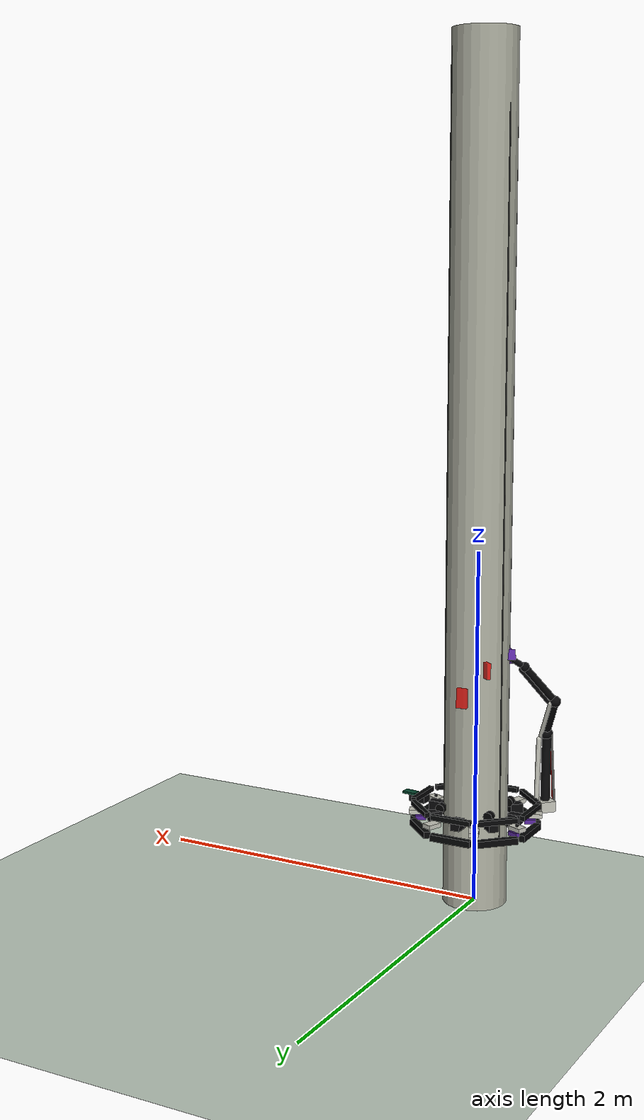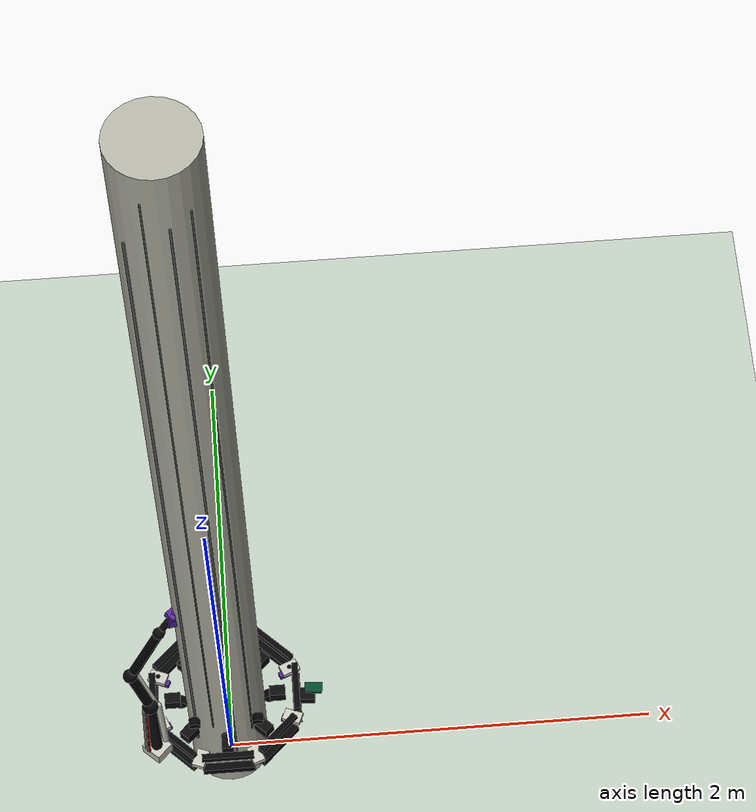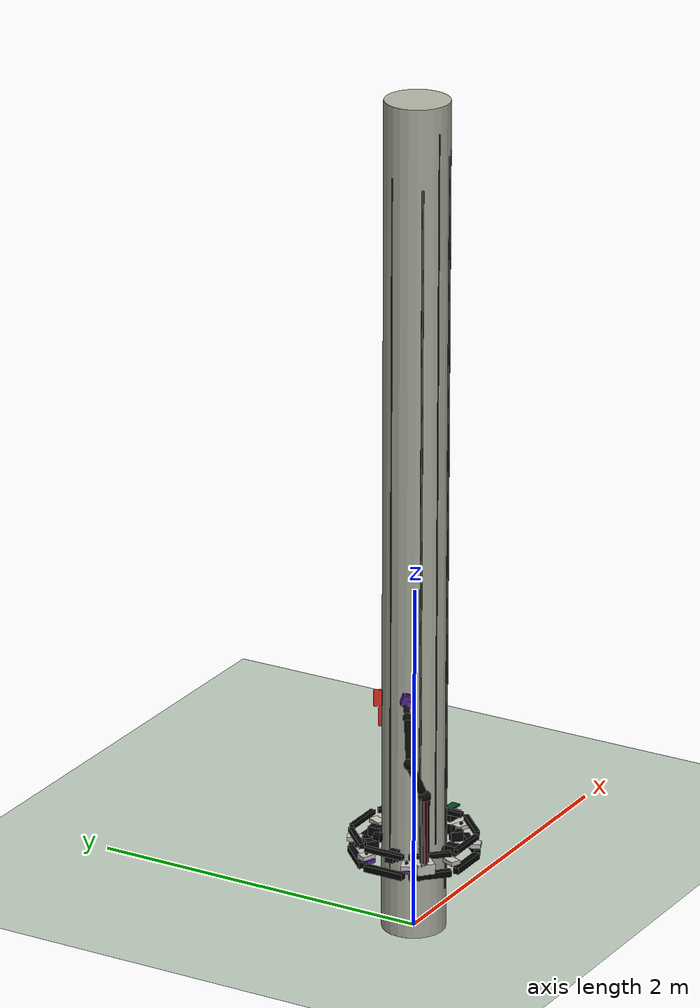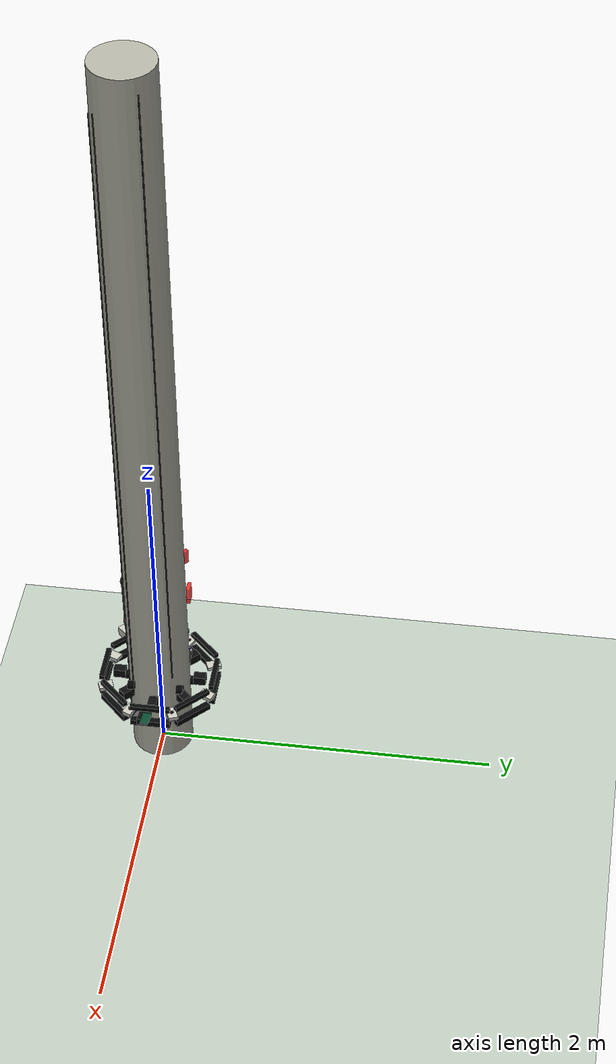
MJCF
<mujoco model="palmclimber_visual_scene">
  <compiler angle="radian" autolimits="true"/>
  <option timestep="0.01" gravity="0 0 0"/>

  <visual>
    <global offwidth="1280" offheight="960"/>
    <headlight diffuse="0.7 0.7 0.7" ambient="0.35 0.35 0.35" specular="0.1 0.1 0.1"/>
    <rgba haze="0.88 0.93 0.96 1"/>
    <quality shadowsize="2048"/>
  </visual>

  <asset>
    <texture name="skybox" type="skybox" builtin="gradient"
             rgb1="0.68 0.80 0.88" rgb2="0.95 0.97 0.98" width="512" height="512"/>
    <texture name="floor_tex" type="2d" builtin="checker"
             rgb1="0.78 0.82 0.78" rgb2="0.70 0.76 0.70" width="64" height="64"/>
    <texture name="bark_tex" type="2d" builtin="checker"
             rgb1="0.86 0.86 0.83" rgb2="0.66 0.67 0.64" width="64" height="256"/>

    <material name="floor_mat" texture="floor_tex" texrepeat="10 10" reflectance="0.08"/>
    <material name="bark_mat" texture="bark_tex" texrepeat="2 10" rgba="0.92 0.92 0.88 1"/>
    <material name="bark_line" rgba="0.34 0.35 0.33 1"/>
    <material name="black_extrusion" rgba="0.015 0.016 0.018 1"/>
    <material name="dark_servo" rgba="0.035 0.035 0.04 1"/>
    <material name="silver_plate" rgba="0.78 0.78 0.74 1" specular="0.25" shininess="0.4"/>
    <material name="purple_bracket" rgba="0.36 0.16 0.64 1"/>
    <material name="blue_bearing" rgba="0.02 0.12 0.80 1"/>
    <material name="rubber" rgba="0.005 0.005 0.006 1"/>
    <material name="wire_red" rgba="0.85 0.05 0.02 1"/>
    <material name="wire_black" rgba="0.0 0.0 0.0 1"/>
    <material name="wire_white" rgba="0.92 0.92 0.88 1"/>
    <material name="pcb" rgba="0.02 0.28 0.18 1"/>
    <material name="zero_friction_patch" rgba="1.0 0.02 0.00 0.78"/>
  </asset>

  <worldbody>
    <geom name="ground" type="plane" size="5 5 0.1" material="floor_mat" contype="0" conaffinity="0"/>

    <light name="key" pos="-2.5 -3.0 5.0" dir="0.45 0.55 -1" diffuse="0.85 0.82 0.78" castshadow="true"/>
    <light name="fill" pos="3.0 2.5 3.0" dir="-0.6 -0.4 -0.8" diffuse="0.35 0.38 0.42" castshadow="false"/>

    <body name="tree" pos="0 0 0">
      <geom name="trunk" type="cylinder" size="0.18 2.4" pos="0 0 2.4"
            material="bark_mat" contype="0" conaffinity="0"/>
      <geom type="capsule" fromto="-0.14 -0.115 0.35 -0.14 -0.115 4.35" size="0.006" material="bark_line" contype="0" conaffinity="0"/>
      <geom type="capsule" fromto="-0.06 -0.168 0.55 -0.06 -0.168 4.65" size="0.004" material="bark_line" contype="0" conaffinity="0"/>
      <geom type="capsule" fromto="0.035 -0.177 0.25 0.035 -0.177 4.50" size="0.005" material="bark_line" contype="0" conaffinity="0"/>
      <geom type="capsule" fromto="0.115 -0.138 0.45 0.115 -0.138 4.55" size="0.004" material="bark_line" contype="0" conaffinity="0"/>
      <geom type="capsule" fromto="-0.17 0.055 0.40 -0.17 0.055 4.40" size="0.004" material="bark_line" contype="0" conaffinity="0"/>
      <geom type="capsule" fromto="0.145 0.105 0.65 0.145 0.105 4.70" size="0.004" material="bark_line" contype="0" conaffinity="0"/>
      <geom name="zero_friction_patch_1" type="box" size="0.030 0.010 0.055"
            pos="0 0.202 1.22" material="zero_friction_patch" contype="0" conaffinity="0"/>
      <geom name="zero_friction_patch_2" type="box" size="0.024 0.010 0.045"
            pos="-0.128 0.158 1.38" euler="0 0 -0.68"
            material="zero_friction_patch" contype="0" conaffinity="0"/>
    </body>

    <body name="climber_root" pos="0 0 0.45">
      <freejoint name="climber_free"/>

      <!-- Two-layer octagonal aluminum extrusion frame around the trunk. -->
      <geom type="box" size="0.118 0.018 0.018" pos=" 0.330  0.000 0.000" euler="0 0 1.5708" material="black_extrusion" contype="0" conaffinity="0"/>
      <geom type="box" size="0.118 0.018 0.018" pos=" 0.233  0.233 0.000" euler="0 0 2.3562" material="black_extrusion" contype="0" conaffinity="0"/>
      <geom type="box" size="0.118 0.018 0.018" pos=" 0.000  0.330 0.000" euler="0 0 3.1416" material="black_extrusion" contype="0" conaffinity="0"/>
      <geom type="box" size="0.118 0.018 0.018" pos="-0.233  0.233 0.000" euler="0 0 3.9270" material="black_extrusion" contype="0" conaffinity="0"/>
      <geom type="box" size="0.118 0.018 0.018" pos="-0.330  0.000 0.000" euler="0 0 4.7124" material="black_extrusion" contype="0" conaffinity="0"/>
      <geom type="box" size="0.118 0.018 0.018" pos="-0.233 -0.233 0.000" euler="0 0 5.4978" material="black_extrusion" contype="0" conaffinity="0"/>
      <geom type="box" size="0.118 0.018 0.018" pos=" 0.000 -0.330 0.000" euler="0 0 0.0000" material="black_extrusion" contype="0" conaffinity="0"/>
      <geom type="box" size="0.118 0.018 0.018" pos=" 0.233 -0.233 0.000" euler="0 0 0.7854" material="black_extrusion" contype="0" conaffinity="0"/>

      <geom type="box" size="0.118 0.014 0.014" pos=" 0.330  0.000 0.115" euler="0 0 1.5708" material="black_extrusion" contype="0" conaffinity="0"/>
      <geom type="box" size="0.118 0.014 0.014" pos=" 0.233  0.233 0.115" euler="0 0 2.3562" material="black_extrusion" contype="0" conaffinity="0"/>
      <geom type="box" size="0.118 0.014 0.014" pos=" 0.000  0.330 0.115" euler="0 0 3.1416" material="black_extrusion" contype="0" conaffinity="0"/>
      <geom type="box" size="0.118 0.014 0.014" pos="-0.233  0.233 0.115" euler="0 0 3.9270" material="black_extrusion" contype="0" conaffinity="0"/>
      <geom type="box" size="0.118 0.014 0.014" pos="-0.330  0.000 0.115" euler="0 0 4.7124" material="black_extrusion" contype="0" conaffinity="0"/>
      <geom type="box" size="0.118 0.014 0.014" pos="-0.233 -0.233 0.115" euler="0 0 5.4978" material="black_extrusion" contype="0" conaffinity="0"/>
      <geom type="box" size="0.118 0.014 0.014" pos=" 0.000 -0.330 0.115" euler="0 0 0.0000" material="black_extrusion" contype="0" conaffinity="0"/>
      <geom type="box" size="0.118 0.014 0.014" pos=" 0.233 -0.233 0.115" euler="0 0 0.7854" material="black_extrusion" contype="0" conaffinity="0"/>

      <!-- Silver corner plates, purple brackets, and visible screw heads. -->
      <geom type="box" size="0.042 0.028 0.012" pos=" 0.305  0.126 0.058" euler="0 0 0.3927" material="silver_plate" contype="0" conaffinity="0"/>
      <geom type="box" size="0.042 0.028 0.012" pos=" 0.126  0.305 0.058" euler="0 0 1.1781" material="silver_plate" contype="0" conaffinity="0"/>
      <geom type="box" size="0.042 0.028 0.012" pos="-0.126  0.305 0.058" euler="0 0 1.9635" material="silver_plate" contype="0" conaffinity="0"/>
      <geom type="box" size="0.042 0.028 0.012" pos="-0.305  0.126 0.058" euler="0 0 2.7489" material="silver_plate" contype="0" conaffinity="0"/>
      <geom type="box" size="0.042 0.028 0.012" pos="-0.305 -0.126 0.058" euler="0 0 3.5343" material="silver_plate" contype="0" conaffinity="0"/>
      <geom type="box" size="0.042 0.028 0.012" pos="-0.126 -0.305 0.058" euler="0 0 4.3197" material="silver_plate" contype="0" conaffinity="0"/>
      <geom type="box" size="0.042 0.028 0.012" pos=" 0.126 -0.305 0.058" euler="0 0 5.1051" material="silver_plate" contype="0" conaffinity="0"/>
      <geom type="box" size="0.042 0.028 0.012" pos=" 0.305 -0.126 0.058" euler="0 0 5.8905" material="silver_plate" contype="0" conaffinity="0"/>

      <geom type="box" size="0.030 0.014 0.012" pos=" 0.284  0.118 0.020" euler="0 0 0.3927" material="purple_bracket" contype="0" conaffinity="0"/>
      <geom type="box" size="0.030 0.014 0.012" pos="-0.284  0.118 0.020" euler="0 0 2.7489" material="purple_bracket" contype="0" conaffinity="0"/>
      <geom type="box" size="0.030 0.014 0.012" pos="-0.284 -0.118 0.020" euler="0 0 3.5343" material="purple_bracket" contype="0" conaffinity="0"/>
      <geom type="box" size="0.030 0.014 0.012" pos=" 0.284 -0.118 0.020" euler="0 0 5.8905" material="purple_bracket" contype="0" conaffinity="0"/>

      <geom type="sphere" size="0.010" pos=" 0.305  0.126 0.074" material="dark_servo" contype="0" conaffinity="0"/>
      <geom type="sphere" size="0.010" pos="-0.305  0.126 0.074" material="dark_servo" contype="0" conaffinity="0"/>
      <geom type="sphere" size="0.010" pos="-0.305 -0.126 0.074" material="dark_servo" contype="0" conaffinity="0"/>
      <geom type="sphere" size="0.010" pos=" 0.305 -0.126 0.074" material="dark_servo" contype="0" conaffinity="0"/>

      <!-- Eight inward wheel/servo modules around the ring. -->
      <geom type="box" size="0.036 0.026 0.028" pos=" 0.242  0.000 0.065" euler="0 0 0.0000" material="dark_servo" contype="0" conaffinity="0"/>
      <geom type="box" size="0.036 0.026 0.028" pos=" 0.171  0.171 0.065" euler="0 0 0.7854" material="dark_servo" contype="0" conaffinity="0"/>
      <geom type="box" size="0.036 0.026 0.028" pos=" 0.000  0.242 0.065" euler="0 0 1.5708" material="dark_servo" contype="0" conaffinity="0"/>
      <geom type="box" size="0.036 0.026 0.028" pos="-0.171  0.171 0.065" euler="0 0 2.3562" material="dark_servo" contype="0" conaffinity="0"/>
      <geom type="box" size="0.036 0.026 0.028" pos="-0.242  0.000 0.065" euler="0 0 3.1416" material="dark_servo" contype="0" conaffinity="0"/>
      <geom type="box" size="0.036 0.026 0.028" pos="-0.171 -0.171 0.065" euler="0 0 3.9270" material="dark_servo" contype="0" conaffinity="0"/>
      <geom type="box" size="0.036 0.026 0.028" pos=" 0.000 -0.242 0.065" euler="0 0 4.7124" material="dark_servo" contype="0" conaffinity="0"/>
      <geom type="box" size="0.036 0.026 0.028" pos=" 0.171 -0.171 0.065" euler="0 0 5.4978" material="dark_servo" contype="0" conaffinity="0"/>

      <body name="visual_wheel1" pos="0.205 0.000 0.045"><joint name="visual_wheel1_spin" type="hinge" axis="0 1 0"/><geom type="cylinder" size="0.026 0.020" euler="1.5708 0 0" material="rubber" contype="0" conaffinity="0"/><geom type="sphere" size="0.010" material="blue_bearing" contype="0" conaffinity="0"/></body>
      <body name="visual_wheel2" pos="0.145 0.145 0.105"><joint name="visual_wheel2_spin" type="hinge" axis="-0.707 0.707 0"/><geom type="cylinder" size="0.026 0.020" euler="1.5708 0 0.7854" material="rubber" contype="0" conaffinity="0"/><geom type="sphere" size="0.010" material="blue_bearing" contype="0" conaffinity="0"/></body>
      <body name="visual_wheel3" pos="0.000 0.205 0.045"><joint name="visual_wheel3_spin" type="hinge" axis="-1 0 0"/><geom type="cylinder" size="0.026 0.020" euler="1.5708 0 1.5708" material="rubber" contype="0" conaffinity="0"/><geom type="sphere" size="0.010" material="blue_bearing" contype="0" conaffinity="0"/></body>
      <body name="visual_wheel4" pos="-0.145 0.145 0.105"><joint name="visual_wheel4_spin" type="hinge" axis="-0.707 -0.707 0"/><geom type="cylinder" size="0.026 0.020" euler="1.5708 0 2.3562" material="rubber" contype="0" conaffinity="0"/><geom type="sphere" size="0.010" material="blue_bearing" contype="0" conaffinity="0"/></body>
      <body name="visual_wheel5" pos="-0.205 0.000 0.045"><joint name="visual_wheel5_spin" type="hinge" axis="0 -1 0"/><geom type="cylinder" size="0.026 0.020" euler="1.5708 0 3.1416" material="rubber" contype="0" conaffinity="0"/><geom type="sphere" size="0.010" material="blue_bearing" contype="0" conaffinity="0"/></body>
      <body name="visual_wheel6" pos="-0.145 -0.145 0.105"><joint name="visual_wheel6_spin" type="hinge" axis="0.707 -0.707 0"/><geom type="cylinder" size="0.026 0.020" euler="1.5708 0 3.9270" material="rubber" contype="0" conaffinity="0"/><geom type="sphere" size="0.010" material="blue_bearing" contype="0" conaffinity="0"/></body>
      <body name="visual_wheel7" pos="0.000 -0.205 0.045"><joint name="visual_wheel7_spin" type="hinge" axis="1 0 0"/><geom type="cylinder" size="0.026 0.020" euler="1.5708 0 4.7124" material="rubber" contype="0" conaffinity="0"/><geom type="sphere" size="0.010" material="blue_bearing" contype="0" conaffinity="0"/></body>
      <body name="visual_wheel8" pos="0.145 -0.145 0.105"><joint name="visual_wheel8_spin" type="hinge" axis="0.707 0.707 0"/><geom type="cylinder" size="0.026 0.020" euler="1.5708 0 5.4978" material="rubber" contype="0" conaffinity="0"/><geom type="sphere" size="0.010" material="blue_bearing" contype="0" conaffinity="0"/></body>

      <!-- Side-mounted arm and purple tree-facing gripper. -->
      <geom type="box" size="0.050 0.045 0.030" pos="-0.320 -0.245 0.085" euler="0 0 -0.7500" material="silver_plate" contype="0" conaffinity="0"/>
      <geom type="capsule" fromto="-0.320 -0.245 0.080 -0.322 -0.250 0.500" size="0.026" material="dark_servo" contype="0" conaffinity="0"/>
      <geom type="capsule" fromto="-0.278 -0.220 0.090 -0.285 -0.224 0.470" size="0.014" material="silver_plate" contype="0" conaffinity="0"/>
      <geom type="sphere" size="0.036" pos="-0.320 -0.245 0.505" material="dark_servo" contype="0" conaffinity="0"/>
      <geom type="capsule" fromto="-0.318 -0.242 0.505 -0.390 -0.190 0.710" size="0.023" material="black_extrusion" contype="0" conaffinity="0"/>
      <geom type="capsule" fromto="-0.298 -0.220 0.495 -0.370 -0.168 0.700" size="0.012" material="silver_plate" contype="0" conaffinity="0"/>
      <geom type="sphere" size="0.032" pos="-0.390 -0.190 0.710" material="dark_servo" contype="0" conaffinity="0"/>
      <geom type="capsule" fromto="-0.390 -0.190 0.710 -0.245 -0.095 0.910" size="0.020" material="black_extrusion" contype="0" conaffinity="0"/>
      <geom type="capsule" fromto="-0.365 -0.175 0.695 -0.225 -0.082 0.895" size="0.010" material="black_extrusion" contype="0" conaffinity="0"/>
      <geom type="sphere" size="0.027" pos="-0.245 -0.095 0.910" material="dark_servo" contype="0" conaffinity="0"/>
      <geom type="capsule" fromto="-0.245 -0.095 0.910 -0.178 -0.042 0.965" size="0.016" material="dark_servo" contype="0" conaffinity="0"/>
      <geom type="box" size="0.043 0.024 0.030" pos="-0.162 -0.034 0.982" euler="0.28 0.15 0.6500" material="purple_bracket" contype="0" conaffinity="0"/>
      <geom type="box" size="0.050 0.013 0.019" pos="-0.142 -0.020 1.015" euler="0.42 -0.10 0.9500" material="purple_bracket" contype="0" conaffinity="0"/>
      <geom type="box" size="0.050 0.013 0.019" pos="-0.155 -0.058 0.945" euler="-0.35 0.18 0.4500" material="purple_bracket" contype="0" conaffinity="0"/>

      <!-- Electronics and wiring visible on the ring and arm. -->
      <geom type="box" size="0.050 0.030 0.020" pos="0.365 -0.030 0.080" euler="0 0 -0.1000" material="dark_servo" contype="0" conaffinity="0"/>
      <geom type="box" size="0.040 0.025 0.006" pos="0.410 -0.010 0.110" euler="0 0 -0.1000" material="pcb" contype="0" conaffinity="0"/>
      <geom type="capsule" fromto="-0.352 -0.280 0.120 -0.335 -0.268 0.520" size="0.004" material="wire_red" contype="0" conaffinity="0"/>
      <geom type="capsule" fromto="-0.362 -0.270 0.115 -0.345 -0.255 0.510" size="0.004" material="wire_black" contype="0" conaffinity="0"/>
      <geom type="capsule" fromto="-0.372 -0.260 0.110 -0.355 -0.245 0.500" size="0.003" material="wire_white" contype="0" conaffinity="0"/>
      <geom type="capsule" fromto="-0.390 -0.190 0.710 -0.246 -0.094 0.910" size="0.003" material="wire_red" contype="0" conaffinity="0"/>
      <geom type="capsule" fromto="-0.402 -0.180 0.700 -0.258 -0.085 0.900" size="0.003" material="wire_black" contype="0" conaffinity="0"/>
    </body>
  </worldbody>

  <keyframe>
    <key name="home" qpos="0 0 0.45 1 0 0 0 0 0 0 0 0 0 0 0"/>
  </keyframe>
</mujoco>
